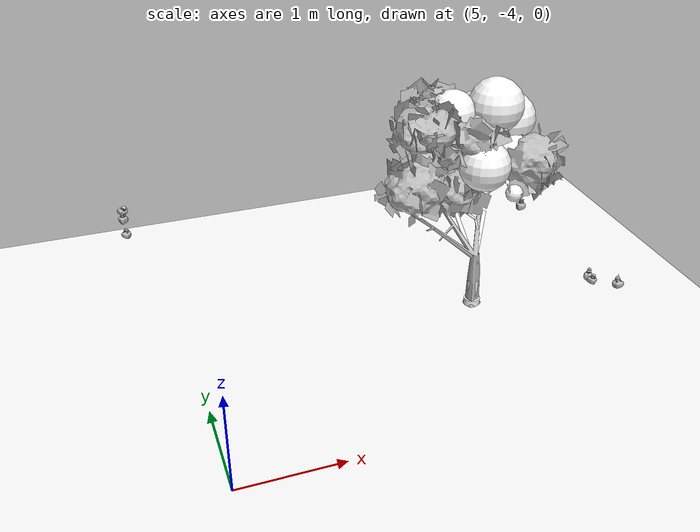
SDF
<sdf version="1.11">
 <world name="peach_orchard">
  <model name="ground">
   <static>true</static>
   <link name="link">
    <visual name="soil">
     <geometry><plane><normal>0 0 1</normal><size>32 22</size></plane></geometry>
     <material>
      <ambient>1 1 1 1</ambient>
      <diffuse>1 1 1 1</diffuse>
      <specular>0.1 0.1 0.1 1</specular>
      <pbr>
       <metal>
        <albedo_map>textures/soil_albedo.png</albedo_map>
        <normal_map type="tangent">textures/soil_normal.png</normal_map>
        <roughness>0.95</roughness>
        <metalness>0</metalness>
       </metal>
      </pbr>
     </material>
    </visual>
    <collision name="c_soil">
     <geometry><plane><normal>0 0 1</normal><size>32 22</size></plane></geometry>
    </collision>
   </link>
  </model>
  <model name="tree_r4_t2">
   <pose>8 -2.2 0 0 0 0</pose>
   <static>true</static>
   <link name="link">
    <visual name="tree_mesh">
     <pose>0 0 0 0 0 0.340988</pose>
     <geometry>
      <mesh><uri>model://peach_sim/meshes/peach_tree_a.glb</uri><scale>1.06646 1.06646 1.06646</scale></mesh>
     </geometry>
    </visual>
    <visual name="trunk_0">
     <pose>0 0 0.148714 0 0 0</pose>
     <geometry><cylinder><radius>0.0594382</radius><length>0.297428</length></cylinder></geometry>
     <material>
      <ambient>1 1 1 1</ambient>
      <diffuse>1 1 1 1</diffuse>
      <specular>0.1 0.1 0.1 1</specular>
      <pbr>
       <metal>
        <albedo_map>textures/bark_albedo.png</albedo_map>
        <normal_map type="tangent">textures/bark_normal.png</normal_map>
        <roughness>0.9</roughness>
        <metalness>0</metalness>
       </metal>
      </pbr>
     </material>
    </visual>
    <collision name="c_trunk_0">
     <pose>0 0 0.148714 0 0 0</pose>
     <geometry><cylinder><radius>0.0594382</radius><length>0.297428</length></cylinder></geometry>
    </collision>
    <visual name="trunk_1">
     <pose>0 0 0.419102 0 0 0</pose>
     <geometry><cylinder><radius>0.0427955</radius><length>0.24335</length></cylinder></geometry>
     <material>
      <ambient>1 1 1 1</ambient>
      <diffuse>1 1 1 1</diffuse>
      <specular>0.1 0.1 0.1 1</specular>
      <pbr>
       <metal>
        <albedo_map>textures/bark_albedo.png</albedo_map>
        <normal_map type="tangent">textures/bark_normal.png</normal_map>
        <roughness>0.9</roughness>
        <metalness>0</metalness>
       </metal>
      </pbr>
     </material>
    </visual>
    <collision name="c_trunk_1">
     <pose>0 0 0.419102 0 0 0</pose>
     <geometry><cylinder><radius>0.0427955</radius><length>0.24335</length></cylinder></geometry>
    </collision>
    <visual name="root_flare">
     <pose>0 0 0.035 0 0 0</pose>
     <geometry><cylinder><radius>0.0861854</radius><length>0.07</length></cylinder></geometry>
     <material>
      <ambient>1 1 1 1</ambient>
      <diffuse>1 1 1 1</diffuse>
      <specular>0.1 0.1 0.1 1</specular>
      <pbr>
       <metal>
        <albedo_map>textures/bark_albedo.png</albedo_map>
        <normal_map type="tangent">textures/bark_normal.png</normal_map>
        <roughness>0.95</roughness>
        <metalness>0</metalness>
       </metal>
      </pbr>
     </material>
    </visual>
    <visual name="scaffold_0">
     <pose>0.00829332 0.386123 0.733325 0 1.02264 1.54932</pose>
     <geometry><cylinder><radius>0.022</radius><length>0.905021</length></cylinder></geometry>
     <material>
      <ambient>1 1 1 1</ambient>
      <diffuse>1 1 1 1</diffuse>
      <specular>0.1 0.1 0.1 1</specular>
      <pbr>
       <metal>
        <albedo_map>textures/bark_albedo.png</albedo_map>
        <normal_map type="tangent">textures/bark_normal.png</normal_map>
        <roughness>0.9</roughness>
        <metalness>0</metalness>
       </metal>
      </pbr>
     </material>
    </visual>
    <collision name="c_scaffold_0">
     <pose>0.00829332 0.386123 0.733325 0 1.02264 1.54932</pose>
     <geometry><cylinder><radius>0.022</radius><length>0.905021</length></cylinder></geometry>
    </collision>
    <visual name="branchlet_0_0">
     <pose>0.0829994 0.738779 0.991585 0 0.859458 0.581952</pose>
     <geometry><cylinder><radius>0.012</radius><length>0.215215</length></cylinder></geometry>
     <material>
      <ambient>1 1 1 1</ambient>
      <diffuse>1 1 1 1</diffuse>
      <specular>0.1 0.1 0.1 1</specular>
      <pbr>
       <metal>
        <albedo_map>textures/bark_albedo.png</albedo_map>
        <normal_map type="tangent">textures/bark_normal.png</normal_map>
        <roughness>0.9</roughness>
        <metalness>0</metalness>
       </metal>
      </pbr>
     </material>
    </visual>
    <visual name="branchlet_0_1">
     <pose>0.115866 0.759489 0.999153 0 0.970603 0.727887</pose>
     <geometry><cylinder><radius>0.012</radius><length>0.32948</length></cylinder></geometry>
     <material>
      <ambient>1 1 1 1</ambient>
      <diffuse>1 1 1 1</diffuse>
      <specular>0.1 0.1 0.1 1</specular>
      <pbr>
       <metal>
        <albedo_map>textures/bark_albedo.png</albedo_map>
        <normal_map type="tangent">textures/bark_normal.png</normal_map>
        <roughness>0.9</roughness>
        <metalness>0</metalness>
       </metal>
      </pbr>
     </material>
    </visual>
    <visual name="scaffold_1">
     <pose>0.138366 0.19628 0.684572 0 0.90904 0.956763</pose>
     <geometry><cylinder><radius>0.022</radius><length>0.608805</length></cylinder></geometry>
     <material>
      <ambient>1 1 1 1</ambient>
      <diffuse>1 1 1 1</diffuse>
      <specular>0.1 0.1 0.1 1</specular>
      <pbr>
       <metal>
        <albedo_map>textures/bark_albedo.png</albedo_map>
        <normal_map type="tangent">textures/bark_normal.png</normal_map>
        <roughness>0.9</roughness>
        <metalness>0</metalness>
       </metal>
      </pbr>
     </material>
    </visual>
    <collision name="c_scaffold_1">
     <pose>0.138366 0.19628 0.684572 0 0.90904 0.956763</pose>
     <geometry><cylinder><radius>0.022</radius><length>0.608805</length></cylinder></geometry>
    </collision>
    <visual name="branchlet_1_0">
     <pose>0.146969 0.448944 0.812696 0 1.38606 1.97144</pose>
     <geometry><cylinder><radius>0.012</radius><length>0.331901</length></cylinder></geometry>
     <material>
      <ambient>1 1 1 1</ambient>
      <diffuse>1 1 1 1</diffuse>
      <specular>0.1 0.1 0.1 1</specular>
      <pbr>
       <metal>
        <albedo_map>textures/bark_albedo.png</albedo_map>
        <normal_map type="tangent">textures/bark_normal.png</normal_map>
        <roughness>0.9</roughness>
        <metalness>0</metalness>
       </metal>
      </pbr>
     </material>
    </visual>
    <visual name="branchlet_1_1">
     <pose>0.118994 0.219207 0.784208 0 0.292807 2.24784</pose>
     <geometry><cylinder><radius>0.012</radius><length>0.209376</length></cylinder></geometry>
     <material>
      <ambient>1 1 1 1</ambient>
      <diffuse>1 1 1 1</diffuse>
      <specular>0.1 0.1 0.1 1</specular>
      <pbr>
       <metal>
        <albedo_map>textures/bark_albedo.png</albedo_map>
        <normal_map type="tangent">textures/bark_normal.png</normal_map>
        <roughness>0.9</roughness>
        <metalness>0</metalness>
       </metal>
      </pbr>
     </material>
    </visual>
    <visual name="canopy_0">
     <pose>0.0830698 0.545833 1.75556 0 0 0</pose>
     <geometry><sphere><radius>0.25757</radius></sphere></geometry>
     <material>
      <ambient>1 1 1 1</ambient>
      <diffuse>1 1 1 1</diffuse>
      <specular>0.1 0.1 0.1 1</specular>
      <pbr>
       <metal>
        <albedo_map>textures/leaf_albedo.png</albedo_map>
        <normal_map type="tangent">textures/leaf_normal.png</normal_map>
        <roughness>0.85</roughness>
        <metalness>0</metalness>
       </metal>
      </pbr>
     </material>
    </visual>
    <collision name="c_canopy_0">
     <pose>0.0830698 0.545833 1.75556 0 0 0</pose>
     <geometry><sphere><radius>0.25757</radius></sphere></geometry>
    </collision>
    <visual name="canopy_1">
     <pose>0.484981 0.436095 1.90812 0 0 0</pose>
     <geometry><sphere><radius>0.283323</radius></sphere></geometry>
     <material>
      <ambient>1 1 1 1</ambient>
      <diffuse>1 1 1 1</diffuse>
      <specular>0.1 0.1 0.1 1</specular>
      <pbr>
       <metal>
        <albedo_map>textures/leaf_albedo.png</albedo_map>
        <normal_map type="tangent">textures/leaf_normal.png</normal_map>
        <roughness>0.85</roughness>
        <metalness>0</metalness>
       </metal>
      </pbr>
     </material>
    </visual>
    <collision name="c_canopy_1">
     <pose>0.484981 0.436095 1.90812 0 0 0</pose>
     <geometry><sphere><radius>0.283323</radius></sphere></geometry>
    </collision>
    <visual name="canopy_2">
     <pose>-0.106947 0.537688 1.96744 0 0 0</pose>
     <geometry><sphere><radius>0.259256</radius></sphere></geometry>
     <material>
      <ambient>1 1 1 1</ambient>
      <diffuse>1 1 1 1</diffuse>
      <specular>0.1 0.1 0.1 1</specular>
      <pbr>
       <metal>
        <albedo_map>textures/leaf_albedo.png</albedo_map>
        <normal_map type="tangent">textures/leaf_normal.png</normal_map>
        <roughness>0.85</roughness>
        <metalness>0</metalness>
       </metal>
      </pbr>
     </material>
    </visual>
    <collision name="c_canopy_2">
     <pose>-0.106947 0.537688 1.96744 0 0 0</pose>
     <geometry><sphere><radius>0.259256</radius></sphere></geometry>
    </collision>
    <visual name="canopy_3">
     <pose>0.433535 0.160575 1.61621 0 0 0</pose>
     <geometry><sphere><radius>0.215038</radius></sphere></geometry>
     <material>
      <ambient>1 1 1 1</ambient>
      <diffuse>1 1 1 1</diffuse>
      <specular>0.1 0.1 0.1 1</specular>
      <pbr>
       <metal>
        <albedo_map>textures/leaf_albedo.png</albedo_map>
        <normal_map type="tangent">textures/leaf_normal.png</normal_map>
        <roughness>0.85</roughness>
        <metalness>0</metalness>
       </metal>
      </pbr>
     </material>
    </visual>
    <visual name="canopy_4">
     <pose>-0.170918 0.381551 2.05951 0 0 0</pose>
     <geometry><sphere><radius>0.24313</radius></sphere></geometry>
     <material>
      <ambient>1 1 1 1</ambient>
      <diffuse>1 1 1 1</diffuse>
      <specular>0.1 0.1 0.1 1</specular>
      <pbr>
       <metal>
        <albedo_map>textures/leaf_albedo.png</albedo_map>
        <normal_map type="tangent">textures/leaf_normal.png</normal_map>
        <roughness>0.85</roughness>
        <metalness>0</metalness>
       </metal>
      </pbr>
     </material>
    </visual>
    <visual name="canopy_5">
     <pose>0.259 0.29291 2.13065 0 0 0</pose>
     <geometry><sphere><radius>0.282477</radius></sphere></geometry>
     <material>
      <ambient>1 1 1 1</ambient>
      <diffuse>1 1 1 1</diffuse>
      <specular>0.1 0.1 0.1 1</specular>
      <pbr>
       <metal>
        <albedo_map>textures/leaf_albedo.png</albedo_map>
        <normal_map type="tangent">textures/leaf_normal.png</normal_map>
        <roughness>0.85</roughness>
        <metalness>0</metalness>
       </metal>
      </pbr>
     </material>
    </visual>
    <visual name="canopy_6">
     <pose>0.156801 0.472894 1.93117 0 0 0</pose>
     <geometry><sphere><radius>0.288171</radius></sphere></geometry>
     <material>
      <ambient>1 1 1 1</ambient>
      <diffuse>1 1 1 1</diffuse>
      <specular>0.1 0.1 0.1 1</specular>
      <pbr>
       <metal>
        <albedo_map>textures/leaf_albedo.png</albedo_map>
        <normal_map type="tangent">textures/leaf_normal.png</normal_map>
        <roughness>0.85</roughness>
        <metalness>0</metalness>
       </metal>
      </pbr>
     </material>
    </visual>
    <visual name="canopy_7">
     <pose>0.0464488 0.030394 1.61475 0 0 0</pose>
     <geometry><sphere><radius>0.262493</radius></sphere></geometry>
     <material>
      <ambient>1 1 1 1</ambient>
      <diffuse>1 1 1 1</diffuse>
      <specular>0.1 0.1 0.1 1</specular>
      <pbr>
       <metal>
        <albedo_map>textures/leaf_albedo.png</albedo_map>
        <normal_map type="tangent">textures/leaf_normal.png</normal_map>
        <roughness>0.85</roughness>
        <metalness>0</metalness>
       </metal>
      </pbr>
     </material>
    </visual>
    <visual name="canopy_8">
     <pose>-0.196479 0.629641 1.61171 0 0 0</pose>
     <geometry><sphere><radius>0.319051</radius></sphere></geometry>
     <material>
      <ambient>1 1 1 1</ambient>
      <diffuse>1 1 1 1</diffuse>
      <specular>0.1 0.1 0.1 1</specular>
      <pbr>
       <metal>
        <albedo_map>textures/leaf_albedo.png</albedo_map>
        <normal_map type="tangent">textures/leaf_normal.png</normal_map>
        <roughness>0.85</roughness>
        <metalness>0</metalness>
       </metal>
      </pbr>
     </material>
    </visual>
    <visual name="foliage_0">
     <pose>0.268412 0.566721 1.40834 0 0 0</pose>
     <geometry><sphere><radius>0.0830375</radius></sphere></geometry>
     <material>
      <ambient>1 1 1 1</ambient>
      <diffuse>1 1 1 1</diffuse>
      <specular>0.1 0.1 0.1 1</specular>
      <pbr>
       <metal>
        <albedo_map>textures/leaf_albedo.png</albedo_map>
        <normal_map type="tangent">textures/leaf_normal.png</normal_map>
        <roughness>0.85</roughness>
        <metalness>0</metalness>
       </metal>
      </pbr>
     </material>
    </visual>
    <visual name="foliage_4">
     <pose>0.24187 -0.252794 1.41346 0 0 0</pose>
     <geometry><sphere><radius>0.0859828</radius></sphere></geometry>
     <material>
      <ambient>1 1 1 1</ambient>
      <diffuse>1 1 1 1</diffuse>
      <specular>0.1 0.1 0.1 1</specular>
      <pbr>
       <metal>
        <albedo_map>textures/leaf_albedo.png</albedo_map>
        <normal_map type="tangent">textures/leaf_normal.png</normal_map>
        <roughness>0.85</roughness>
        <metalness>0</metalness>
       </metal>
      </pbr>
     </material>
    </visual>
    <visual name="twig_0">
     <pose>0.196257 0.566528 1.53725 0 0.734194 -2.82541</pose>
     <geometry><cylinder><radius>0.007</radius><length>0.116029</length></cylinder></geometry>
     <material>
      <ambient>1 1 1 1</ambient>
      <diffuse>1 1 1 1</diffuse>
      <specular>0.1 0.1 0.1 1</specular>
      <pbr>
       <metal>
        <albedo_map>textures/bark_albedo.png</albedo_map>
        <normal_map type="tangent">textures/bark_normal.png</normal_map>
        <roughness>0.9</roughness>
        <metalness>0</metalness>
       </metal>
      </pbr>
     </material>
    </visual>
    <visual name="twig_1">
     <pose>0.20521 0.66517 1.60827 0 0.240102 2.1912</pose>
     <geometry><cylinder><radius>0.007</radius><length>0.174486</length></cylinder></geometry>
     <material>
      <ambient>1 1 1 1</ambient>
      <diffuse>1 1 1 1</diffuse>
      <specular>0.1 0.1 0.1 1</specular>
      <pbr>
       <metal>
        <albedo_map>textures/bark_albedo.png</albedo_map>
        <normal_map type="tangent">textures/bark_normal.png</normal_map>
        <roughness>0.9</roughness>
        <metalness>0</metalness>
       </metal>
      </pbr>
     </material>
    </visual>
    <visual name="twig_2">
     <pose>0.131875 0.836762 1.57603 0 0.717 2.77368</pose>
     <geometry><cylinder><radius>0.007</radius><length>0.207103</length></cylinder></geometry>
     <material>
      <ambient>1 1 1 1</ambient>
      <diffuse>1 1 1 1</diffuse>
      <specular>0.1 0.1 0.1 1</specular>
      <pbr>
       <metal>
        <albedo_map>textures/bark_albedo.png</albedo_map>
        <normal_map type="tangent">textures/bark_normal.png</normal_map>
        <roughness>0.9</roughness>
        <metalness>0</metalness>
       </metal>
      </pbr>
     </material>
    </visual>
    <visual name="twig_3">
     <pose>0.21369 -0.445533 1.46223 0 0.329534 -2.12654</pose>
     <geometry><cylinder><radius>0.007</radius><length>0.110108</length></cylinder></geometry>
     <material>
      <ambient>1 1 1 1</ambient>
      <diffuse>1 1 1 1</diffuse>
      <specular>0.1 0.1 0.1 1</specular>
      <pbr>
       <metal>
        <albedo_map>textures/bark_albedo.png</albedo_map>
        <normal_map type="tangent">textures/bark_normal.png</normal_map>
        <roughness>0.9</roughness>
        <metalness>0</metalness>
       </metal>
      </pbr>
     </material>
    </visual>
    <visual name="twig_4">
     <pose>0.198644 -0.259182 1.44782 0 0.461128 2.70982</pose>
     <geometry><cylinder><radius>0.007</radius><length>0.112149</length></cylinder></geometry>
     <material>
      <ambient>1 1 1 1</ambient>
      <diffuse>1 1 1 1</diffuse>
      <specular>0.1 0.1 0.1 1</specular>
      <pbr>
       <metal>
        <albedo_map>textures/bark_albedo.png</albedo_map>
        <normal_map type="tangent">textures/bark_normal.png</normal_map>
        <roughness>0.9</roughness>
        <metalness>0</metalness>
       </metal>
      </pbr>
     </material>
    </visual>
    <visual name="twig_5">
     <pose>0.17127 -0.283628 1.4596 0 0.439586 -2.78588</pose>
     <geometry><cylinder><radius>0.007</radius><length>0.204386</length></cylinder></geometry>
     <material>
      <ambient>1 1 1 1</ambient>
      <diffuse>1 1 1 1</diffuse>
      <specular>0.1 0.1 0.1 1</specular>
      <pbr>
       <metal>
        <albedo_map>textures/bark_albedo.png</albedo_map>
        <normal_map type="tangent">textures/bark_normal.png</normal_map>
        <roughness>0.9</roughness>
        <metalness>0</metalness>
       </metal>
      </pbr>
     </material>
    </visual>
   </link>
  </model>
  <model name="peach_tree_r3_t2_01">
   <pose>4.55 -2.07851 1.41006 0 0.0782309 -1.06791</pose>
   <static>true</static>
   <link name="bag">
    <visual name="bag_mesh">
     <pose>0 0 0.0387659 0 0 -0</pose>
     <geometry>
      <mesh><uri>model://peach_sim/meshes/bagged_peach.glb</uri><scale>0.987042 1.13874 0.881043</scale></mesh>
     </geometry>
    </visual>
    <visual name="body">
     <pose>0 0 0.0207659 0 0 0</pose>
     <geometry><ellipsoid><radii>0.0370141 0.0296072 0.0224272</radii></ellipsoid></geometry>
     <material>
      <ambient>1 1 1 1</ambient>
      <diffuse>1 1 1 1</diffuse>
      <specular>0.1 0.1 0.1 1</specular>
      <pbr>
       <metal>
        <albedo_map>textures/paper_bag_albedo.png</albedo_map>
        <normal_map type="tangent">textures/paper_bag_normal.png</normal_map>
        <roughness>0.72</roughness>
        <metalness>0</metalness>
       </metal>
      </pbr>
     </material>
    </visual>
    <visual name="bottom_fold">
     <pose>0 0 0.012 0 0 0.35</pose>
     <geometry><box><size>0.0573718 0.0340483 0.022</size></box></geometry>
     <material>
      <ambient>1 1 1 1</ambient>
      <diffuse>1 1 1 1</diffuse>
      <specular>0.1 0.1 0.1 1</specular>
      <pbr>
       <metal>
        <albedo_map>textures/paper_bag_albedo.png</albedo_map>
        <normal_map type="tangent">textures/paper_bag_normal.png</normal_map>
        <roughness>0.8</roughness>
        <metalness>0</metalness>
       </metal>
      </pbr>
     </material>
    </visual>
    <visual name="fruit">
     <pose>0 0 0.0206395 0 0 0</pose>
     <geometry><sphere><radius>0.0277051</radius></sphere></geometry>
     <material>
      <ambient>1 1 1 1</ambient>
      <diffuse>1 1 1 1</diffuse>
      <specular>0.1 0.1 0.1 1</specular>
      <pbr>
       <metal>
        <albedo_map>textures/fruit_skin_albedo.png</albedo_map>
        <normal_map type="tangent">textures/fruit_skin_normal.png</normal_map>
        <roughness>0.55</roughness>
        <metalness>0</metalness>
       </metal>
      </pbr>
     </material>
    </visual>
    <visual name="neck">
     <pose>0 0 0.0505318 0 0 0</pose>
     <geometry><cylinder><radius>0.013</radius><length>0.018</length></cylinder></geometry>
     <material>
      <ambient>1 1 1 1</ambient>
      <diffuse>1 1 1 1</diffuse>
      <specular>0.1 0.1 0.1 1</specular>
      <pbr>
       <metal>
        <albedo_map>textures/paper_bag_albedo.png</albedo_map>
        <normal_map type="tangent">textures/paper_bag_normal.png</normal_map>
        <roughness>0.75</roughness>
        <metalness>0</metalness>
       </metal>
      </pbr>
     </material>
    </visual>
    <visual name="gather">
     <pose>0 0 0.0315318 0 0 0</pose>
     <geometry><cylinder><radius>0.019</radius><length>0.02</length></cylinder></geometry>
     <material>
      <ambient>1 1 1 1</ambient>
      <diffuse>1 1 1 1</diffuse>
      <specular>0.1 0.1 0.1 1</specular>
      <pbr>
       <metal>
        <albedo_map>textures/paper_bag_albedo.png</albedo_map>
        <normal_map type="tangent">textures/paper_bag_normal.png</normal_map>
        <roughness>0.8</roughness>
        <metalness>0</metalness>
       </metal>
      </pbr>
     </material>
    </visual>
    <visual name="inner_paper">
     <pose>0 0 0.0555318 0 0 0</pose>
     <geometry><cylinder><radius>0.01</radius><length>0.008</length></cylinder></geometry>
     <material>
      <ambient>0.180392 0.14902 0.133333 1</ambient>
      <diffuse>0.180392 0.14902 0.133333 1</diffuse>
      <specular>0.1 0.1 0.1 1</specular>
     </material>
    </visual>
    <visual name="wire_0">
     <pose>0 0 0.0455318 0 0 0</pose>
     <geometry><cylinder><radius>0.0205</radius><length>0.0035</length></cylinder></geometry>
     <material>
      <ambient>0.25 0.25 0.25 1</ambient>
      <diffuse>0.25 0.25 0.25 1</diffuse>
      <specular>0.1 0.1 0.1 1</specular>
     </material>
    </visual>
    <visual name="wire_1">
     <pose>0 0 0.0525318 0 0 0</pose>
     <geometry><cylinder><radius>0.0205</radius><length>0.0035</length></cylinder></geometry>
     <material>
      <ambient>0.25 0.25 0.25 1</ambient>
      <diffuse>0.25 0.25 0.25 1</diffuse>
      <specular>0.1 0.1 0.1 1</specular>
     </material>
    </visual>
    <visual name="wire_tail">
     <pose>0.01 0 0.0535318 0 0.521618 0</pose>
     <geometry><cylinder><radius>0.0012</radius><length>0.026</length></cylinder></geometry>
     <material>
      <ambient>0.25 0.25 0.25 1</ambient>
      <diffuse>0.25 0.25 0.25 1</diffuse>
      <specular>0.1 0.1 0.1 1</specular>
     </material>
    </visual>
    <collision name="c_body">
     <pose>0 0 0.0207659 0 0 0</pose>
     <geometry><cylinder><radius>0.0370141</radius><length>0.0415318</length></cylinder></geometry>
    </collision>
   </link>
  </model>
  <model name="peach_tree_r3_t2_02">
   <pose>4.55 -1.87593 1.45 0 2.53852e-06 0.491273</pose>
   <static>true</static>
   <link name="bag">
    <visual name="bag_mesh">
     <pose>0 0 0.0459503 0 0 0</pose>
     <geometry>
      <mesh><uri>model://peach_sim/meshes/bagged_peach.glb</uri><scale>0.977444 1.1449 1.04432</scale></mesh>
     </geometry>
    </visual>
    <visual name="body">
     <pose>0 0 0.0279503 0 0 0</pose>
     <geometry><ellipsoid><radii>0.0366541 0.0297673 0.0301863</radii></ellipsoid></geometry>
     <material>
      <ambient>1 1 1 1</ambient>
      <diffuse>1 1 1 1</diffuse>
      <specular>0.1 0.1 0.1 1</specular>
      <pbr>
       <metal>
        <albedo_map>textures/paper_bag_albedo.png</albedo_map>
        <normal_map type="tangent">textures/paper_bag_normal.png</normal_map>
        <roughness>0.72</roughness>
        <metalness>0</metalness>
       </metal>
      </pbr>
     </material>
    </visual>
    <visual name="bottom_fold">
     <pose>0 0 0.012 0 0 0.35</pose>
     <geometry><box><size>0.0568139 0.0342324 0.022</size></box></geometry>
     <material>
      <ambient>1 1 1 1</ambient>
      <diffuse>1 1 1 1</diffuse>
      <specular>0.1 0.1 0.1 1</specular>
      <pbr>
       <metal>
        <albedo_map>textures/paper_bag_albedo.png</albedo_map>
        <normal_map type="tangent">textures/paper_bag_normal.png</normal_map>
        <roughness>0.8</roughness>
        <metalness>0</metalness>
       </metal>
      </pbr>
     </material>
    </visual>
    <visual name="fruit">
     <pose>0 0 0.0214281 0 0 0</pose>
     <geometry><sphere><radius>0.0285252</radius></sphere></geometry>
     <material>
      <ambient>1 1 1 1</ambient>
      <diffuse>1 1 1 1</diffuse>
      <specular>0.1 0.1 0.1 1</specular>
      <pbr>
       <metal>
        <albedo_map>textures/fruit_skin_albedo.png</albedo_map>
        <normal_map type="tangent">textures/fruit_skin_normal.png</normal_map>
        <roughness>0.55</roughness>
        <metalness>0</metalness>
       </metal>
      </pbr>
     </material>
    </visual>
    <visual name="neck">
     <pose>0 0 0.0649006 0 0 0</pose>
     <geometry><cylinder><radius>0.013</radius><length>0.018</length></cylinder></geometry>
     <material>
      <ambient>1 1 1 1</ambient>
      <diffuse>1 1 1 1</diffuse>
      <specular>0.1 0.1 0.1 1</specular>
      <pbr>
       <metal>
        <albedo_map>textures/paper_bag_albedo.png</albedo_map>
        <normal_map type="tangent">textures/paper_bag_normal.png</normal_map>
        <roughness>0.75</roughness>
        <metalness>0</metalness>
       </metal>
      </pbr>
     </material>
    </visual>
    <visual name="gather">
     <pose>0 0 0.0459006 0 0 0</pose>
     <geometry><cylinder><radius>0.019</radius><length>0.02</length></cylinder></geometry>
     <material>
      <ambient>1 1 1 1</ambient>
      <diffuse>1 1 1 1</diffuse>
      <specular>0.1 0.1 0.1 1</specular>
      <pbr>
       <metal>
        <albedo_map>textures/paper_bag_albedo.png</albedo_map>
        <normal_map type="tangent">textures/paper_bag_normal.png</normal_map>
        <roughness>0.8</roughness>
        <metalness>0</metalness>
       </metal>
      </pbr>
     </material>
    </visual>
    <visual name="inner_paper">
     <pose>0 0 0.0699006 0 0 0</pose>
     <geometry><cylinder><radius>0.01</radius><length>0.008</length></cylinder></geometry>
     <material>
      <ambient>0.180392 0.14902 0.133333 1</ambient>
      <diffuse>0.180392 0.14902 0.133333 1</diffuse>
      <specular>0.1 0.1 0.1 1</specular>
     </material>
    </visual>
    <visual name="wire_0">
     <pose>0 0 0.0599006 0 0 0</pose>
     <geometry><cylinder><radius>0.0205</radius><length>0.0035</length></cylinder></geometry>
     <material>
      <ambient>0.25 0.25 0.25 1</ambient>
      <diffuse>0.25 0.25 0.25 1</diffuse>
      <specular>0.1 0.1 0.1 1</specular>
     </material>
    </visual>
    <visual name="wire_1">
     <pose>0 0 0.0669006 0 0 0</pose>
     <geometry><cylinder><radius>0.0205</radius><length>0.0035</length></cylinder></geometry>
     <material>
      <ambient>0.25 0.25 0.25 1</ambient>
      <diffuse>0.25 0.25 0.25 1</diffuse>
      <specular>0.1 0.1 0.1 1</specular>
     </material>
    </visual>
    <visual name="wire_tail">
     <pose>0.01 0 0.0679006 0 0.521618 0</pose>
     <geometry><cylinder><radius>0.0012</radius><length>0.026</length></cylinder></geometry>
     <material>
      <ambient>0.25 0.25 0.25 1</ambient>
      <diffuse>0.25 0.25 0.25 1</diffuse>
      <specular>0.1 0.1 0.1 1</specular>
     </material>
    </visual>
    <collision name="c_body">
     <pose>0 0 0.0279503 0 0 0</pose>
     <geometry><cylinder><radius>0.0366541</radius><length>0.0559006</length></cylinder></geometry>
    </collision>
   </link>
  </model>
  <model name="peach_tree_r3_t2_03">
   <pose>4.55 -1.68436 1.45 0 0.57519 -1.01342</pose>
   <static>true</static>
   <link name="bag">
    <visual name="bag_mesh">
     <pose>0 0 0.0461882 0 0 -0</pose>
     <geometry>
      <mesh><uri>model://peach_sim/meshes/bagged_peach.glb</uri><scale>1.06417 1.29968 1.04973</scale></mesh>
     </geometry>
    </visual>
    <visual name="body">
     <pose>0 0 0.0281882 0 0 0</pose>
     <geometry><ellipsoid><radii>0.0399064 0.0337916 0.0304432</radii></ellipsoid></geometry>
     <material>
      <ambient>1 1 1 1</ambient>
      <diffuse>1 1 1 1</diffuse>
      <specular>0.1 0.1 0.1 1</specular>
      <pbr>
       <metal>
        <albedo_map>textures/paper_bag_albedo.png</albedo_map>
        <normal_map type="tangent">textures/paper_bag_normal.png</normal_map>
        <roughness>0.72</roughness>
        <metalness>0</metalness>
       </metal>
      </pbr>
     </material>
    </visual>
    <visual name="bottom_fold">
     <pose>0 0 0.012 0 0 0.35</pose>
     <geometry><box><size>0.061855 0.0388604 0.022</size></box></geometry>
     <material>
      <ambient>1 1 1 1</ambient>
      <diffuse>1 1 1 1</diffuse>
      <specular>0.1 0.1 0.1 1</specular>
      <pbr>
       <metal>
        <albedo_map>textures/paper_bag_albedo.png</albedo_map>
        <normal_map type="tangent">textures/paper_bag_normal.png</normal_map>
        <roughness>0.8</roughness>
        <metalness>0</metalness>
       </metal>
      </pbr>
     </material>
    </visual>
    <visual name="fruit">
     <pose>0 0 0.0208283 0 0 0</pose>
     <geometry><sphere><radius>0.0279014</radius></sphere></geometry>
     <material>
      <ambient>1 1 1 1</ambient>
      <diffuse>1 1 1 1</diffuse>
      <specular>0.1 0.1 0.1 1</specular>
      <pbr>
       <metal>
        <albedo_map>textures/fruit_skin_albedo.png</albedo_map>
        <normal_map type="tangent">textures/fruit_skin_normal.png</normal_map>
        <roughness>0.55</roughness>
        <metalness>0</metalness>
       </metal>
      </pbr>
     </material>
    </visual>
    <visual name="neck">
     <pose>0 0 0.0653764 0 0 0</pose>
     <geometry><cylinder><radius>0.013</radius><length>0.018</length></cylinder></geometry>
     <material>
      <ambient>1 1 1 1</ambient>
      <diffuse>1 1 1 1</diffuse>
      <specular>0.1 0.1 0.1 1</specular>
      <pbr>
       <metal>
        <albedo_map>textures/paper_bag_albedo.png</albedo_map>
        <normal_map type="tangent">textures/paper_bag_normal.png</normal_map>
        <roughness>0.75</roughness>
        <metalness>0</metalness>
       </metal>
      </pbr>
     </material>
    </visual>
    <visual name="gather">
     <pose>0 0 0.0463764 0 0 0</pose>
     <geometry><cylinder><radius>0.019</radius><length>0.02</length></cylinder></geometry>
     <material>
      <ambient>1 1 1 1</ambient>
      <diffuse>1 1 1 1</diffuse>
      <specular>0.1 0.1 0.1 1</specular>
      <pbr>
       <metal>
        <albedo_map>textures/paper_bag_albedo.png</albedo_map>
        <normal_map type="tangent">textures/paper_bag_normal.png</normal_map>
        <roughness>0.8</roughness>
        <metalness>0</metalness>
       </metal>
      </pbr>
     </material>
    </visual>
    <visual name="inner_paper">
     <pose>0 0 0.0703764 0 0 0</pose>
     <geometry><cylinder><radius>0.01</radius><length>0.008</length></cylinder></geometry>
     <material>
      <ambient>0.180392 0.14902 0.133333 1</ambient>
      <diffuse>0.180392 0.14902 0.133333 1</diffuse>
      <specular>0.1 0.1 0.1 1</specular>
     </material>
    </visual>
    <visual name="wire_0">
     <pose>0 0 0.0603764 0 0 0</pose>
     <geometry><cylinder><radius>0.0205</radius><length>0.0035</length></cylinder></geometry>
     <material>
      <ambient>0.25 0.25 0.25 1</ambient>
      <diffuse>0.25 0.25 0.25 1</diffuse>
      <specular>0.1 0.1 0.1 1</specular>
     </material>
    </visual>
    <visual name="wire_1">
     <pose>0 0 0.0673764 0 0 0</pose>
     <geometry><cylinder><radius>0.0205</radius><length>0.0035</length></cylinder></geometry>
     <material>
      <ambient>0.25 0.25 0.25 1</ambient>
      <diffuse>0.25 0.25 0.25 1</diffuse>
      <specular>0.1 0.1 0.1 1</specular>
     </material>
    </visual>
    <visual name="wire_tail">
     <pose>0.01 0 0.0683764 0 0.521618 0</pose>
     <geometry><cylinder><radius>0.0012</radius><length>0.026</length></cylinder></geometry>
     <material>
      <ambient>0.25 0.25 0.25 1</ambient>
      <diffuse>0.25 0.25 0.25 1</diffuse>
      <specular>0.1 0.1 0.1 1</specular>
     </material>
    </visual>
    <collision name="c_body">
     <pose>0 0 0.0281882 0 0 0</pose>
     <geometry><cylinder><radius>0.0399064</radius><length>0.0563764</length></cylinder></geometry>
    </collision>
   </link>
  </model>
  <model name="peach_tree_r4_t1_02">
   <pose>8.22 -4.24792 1.45 0 0.104885 -2.96342</pose>
   <static>true</static>
   <link name="bag">
    <visual name="bag_mesh">
     <pose>0 0 0.0405945 0 0 -0</pose>
     <geometry>
      <mesh><uri>model://peach_sim/meshes/bagged_peach.glb</uri><scale>1.02337 1.24229 0.922601</scale></mesh>
     </geometry>
    </visual>
    <visual name="body">
     <pose>0 0 0.0225945 0 0 0</pose>
     <geometry><ellipsoid><radii>0.0383764 0.0322996 0.024402</radii></ellipsoid></geometry>
     <material>
      <ambient>1 1 1 1</ambient>
      <diffuse>1 1 1 1</diffuse>
      <specular>0.1 0.1 0.1 1</specular>
      <pbr>
       <metal>
        <albedo_map>textures/paper_bag_albedo.png</albedo_map>
        <normal_map type="tangent">textures/paper_bag_normal.png</normal_map>
        <roughness>0.72</roughness>
        <metalness>0</metalness>
       </metal>
      </pbr>
     </material>
    </visual>
    <visual name="bottom_fold">
     <pose>0 0 0.012 0 0 0.35</pose>
     <geometry><box><size>0.0594835 0.0371446 0.022</size></box></geometry>
     <material>
      <ambient>1 1 1 1</ambient>
      <diffuse>1 1 1 1</diffuse>
      <specular>0.1 0.1 0.1 1</specular>
      <pbr>
       <metal>
        <albedo_map>textures/paper_bag_albedo.png</albedo_map>
        <normal_map type="tangent">textures/paper_bag_normal.png</normal_map>
        <roughness>0.8</roughness>
        <metalness>0</metalness>
       </metal>
      </pbr>
     </material>
    </visual>
    <visual name="fruit">
     <pose>0 0 0.0213285 0 0 0</pose>
     <geometry><sphere><radius>0.0284217</radius></sphere></geometry>
     <material>
      <ambient>1 1 1 1</ambient>
      <diffuse>1 1 1 1</diffuse>
      <specular>0.1 0.1 0.1 1</specular>
      <pbr>
       <metal>
        <albedo_map>textures/fruit_skin_albedo.png</albedo_map>
        <normal_map type="tangent">textures/fruit_skin_normal.png</normal_map>
        <roughness>0.55</roughness>
        <metalness>0</metalness>
       </metal>
      </pbr>
     </material>
    </visual>
    <visual name="neck">
     <pose>0 0 0.0541889 0 0 0</pose>
     <geometry><cylinder><radius>0.013</radius><length>0.018</length></cylinder></geometry>
     <material>
      <ambient>1 1 1 1</ambient>
      <diffuse>1 1 1 1</diffuse>
      <specular>0.1 0.1 0.1 1</specular>
      <pbr>
       <metal>
        <albedo_map>textures/paper_bag_albedo.png</albedo_map>
        <normal_map type="tangent">textures/paper_bag_normal.png</normal_map>
        <roughness>0.75</roughness>
        <metalness>0</metalness>
       </metal>
      </pbr>
     </material>
    </visual>
    <visual name="gather">
     <pose>0 0 0.0351889 0 0 0</pose>
     <geometry><cylinder><radius>0.019</radius><length>0.02</length></cylinder></geometry>
     <material>
      <ambient>1 1 1 1</ambient>
      <diffuse>1 1 1 1</diffuse>
      <specular>0.1 0.1 0.1 1</specular>
      <pbr>
       <metal>
        <albedo_map>textures/paper_bag_albedo.png</albedo_map>
        <normal_map type="tangent">textures/paper_bag_normal.png</normal_map>
        <roughness>0.8</roughness>
        <metalness>0</metalness>
       </metal>
      </pbr>
     </material>
    </visual>
    <visual name="inner_paper">
     <pose>0 0 0.0591889 0 0 0</pose>
     <geometry><cylinder><radius>0.01</radius><length>0.008</length></cylinder></geometry>
     <material>
      <ambient>0.180392 0.14902 0.133333 1</ambient>
      <diffuse>0.180392 0.14902 0.133333 1</diffuse>
      <specular>0.1 0.1 0.1 1</specular>
     </material>
    </visual>
    <visual name="wire_0">
     <pose>0 0 0.0491889 0 0 0</pose>
     <geometry><cylinder><radius>0.0205</radius><length>0.0035</length></cylinder></geometry>
     <material>
      <ambient>0.25 0.25 0.25 1</ambient>
      <diffuse>0.25 0.25 0.25 1</diffuse>
      <specular>0.1 0.1 0.1 1</specular>
     </material>
    </visual>
    <visual name="wire_1">
     <pose>0 0 0.0561889 0 0 0</pose>
     <geometry><cylinder><radius>0.0205</radius><length>0.0035</length></cylinder></geometry>
     <material>
      <ambient>0.25 0.25 0.25 1</ambient>
      <diffuse>0.25 0.25 0.25 1</diffuse>
      <specular>0.1 0.1 0.1 1</specular>
     </material>
    </visual>
    <visual name="wire_tail">
     <pose>0.01 0 0.0571889 0 0.521618 0</pose>
     <geometry><cylinder><radius>0.0012</radius><length>0.026</length></cylinder></geometry>
     <material>
      <ambient>0.25 0.25 0.25 1</ambient>
      <diffuse>0.25 0.25 0.25 1</diffuse>
      <specular>0.1 0.1 0.1 1</specular>
     </material>
    </visual>
    <collision name="c_body">
     <pose>0 0 0.0225945 0 0 0</pose>
     <geometry><cylinder><radius>0.0383764</radius><length>0.0451889</length></cylinder></geometry>
    </collision>
   </link>
  </model>
  <model name="peach_tree_r4_t1_05">
   <pose>8.22 -3.9004 1.27233 0 0.201589 -1.19009</pose>
   <static>true</static>
   <link name="bag">
    <visual name="bag_mesh">
     <pose>0 0 0.0412666 0 0 -0</pose>
     <geometry>
      <mesh><uri>model://peach_sim/meshes/bagged_peach.glb</uri><scale>0.938618 1.06285 0.937876</scale></mesh>
     </geometry>
    </visual>
    <visual name="body">
     <pose>0 0 0.0232666 0 0 0</pose>
     <geometry><ellipsoid><radii>0.0351982 0.0276341 0.0251279</radii></ellipsoid></geometry>
     <material>
      <ambient>1 1 1 1</ambient>
      <diffuse>1 1 1 1</diffuse>
      <specular>0.1 0.1 0.1 1</specular>
      <pbr>
       <metal>
        <albedo_map>textures/paper_bag_albedo.png</albedo_map>
        <normal_map type="tangent">textures/paper_bag_normal.png</normal_map>
        <roughness>0.72</roughness>
        <metalness>0</metalness>
       </metal>
      </pbr>
     </material>
    </visual>
    <visual name="bottom_fold">
     <pose>0 0 0.012 0 0 0.35</pose>
     <geometry><box><size>0.0545571 0.0317792 0.022</size></box></geometry>
     <material>
      <ambient>1 1 1 1</ambient>
      <diffuse>1 1 1 1</diffuse>
      <specular>0.1 0.1 0.1 1</specular>
      <pbr>
       <metal>
        <albedo_map>textures/paper_bag_albedo.png</albedo_map>
        <normal_map type="tangent">textures/paper_bag_normal.png</normal_map>
        <roughness>0.8</roughness>
        <metalness>0</metalness>
       </metal>
      </pbr>
     </material>
    </visual>
    <visual name="fruit">
     <pose>0 0 0.0177376 0 0 0</pose>
     <geometry><sphere><radius>0.0246871</radius></sphere></geometry>
     <material>
      <ambient>1 1 1 1</ambient>
      <diffuse>1 1 1 1</diffuse>
      <specular>0.1 0.1 0.1 1</specular>
      <pbr>
       <metal>
        <albedo_map>textures/fruit_skin_albedo.png</albedo_map>
        <normal_map type="tangent">textures/fruit_skin_normal.png</normal_map>
        <roughness>0.55</roughness>
        <metalness>0</metalness>
       </metal>
      </pbr>
     </material>
    </visual>
    <visual name="neck">
     <pose>0 0 0.0555331 0 0 0</pose>
     <geometry><cylinder><radius>0.013</radius><length>0.018</length></cylinder></geometry>
     <material>
      <ambient>1 1 1 1</ambient>
      <diffuse>1 1 1 1</diffuse>
      <specular>0.1 0.1 0.1 1</specular>
      <pbr>
       <metal>
        <albedo_map>textures/paper_bag_albedo.png</albedo_map>
        <normal_map type="tangent">textures/paper_bag_normal.png</normal_map>
        <roughness>0.75</roughness>
        <metalness>0</metalness>
       </metal>
      </pbr>
     </material>
    </visual>
    <visual name="gather">
     <pose>0 0 0.0365331 0 0 0</pose>
     <geometry><cylinder><radius>0.019</radius><length>0.02</length></cylinder></geometry>
     <material>
      <ambient>1 1 1 1</ambient>
      <diffuse>1 1 1 1</diffuse>
      <specular>0.1 0.1 0.1 1</specular>
      <pbr>
       <metal>
        <albedo_map>textures/paper_bag_albedo.png</albedo_map>
        <normal_map type="tangent">textures/paper_bag_normal.png</normal_map>
        <roughness>0.8</roughness>
        <metalness>0</metalness>
       </metal>
      </pbr>
     </material>
    </visual>
    <visual name="inner_paper">
     <pose>0 0 0.0605331 0 0 0</pose>
     <geometry><cylinder><radius>0.01</radius><length>0.008</length></cylinder></geometry>
     <material>
      <ambient>0.180392 0.14902 0.133333 1</ambient>
      <diffuse>0.180392 0.14902 0.133333 1</diffuse>
      <specular>0.1 0.1 0.1 1</specular>
     </material>
    </visual>
    <visual name="wire_0">
     <pose>0 0 0.0505331 0 0 0</pose>
     <geometry><cylinder><radius>0.0205</radius><length>0.0035</length></cylinder></geometry>
     <material>
      <ambient>0.25 0.25 0.25 1</ambient>
      <diffuse>0.25 0.25 0.25 1</diffuse>
      <specular>0.1 0.1 0.1 1</specular>
     </material>
    </visual>
    <visual name="wire_1">
     <pose>0 0 0.0575331 0 0 0</pose>
     <geometry><cylinder><radius>0.0205</radius><length>0.0035</length></cylinder></geometry>
     <material>
      <ambient>0.25 0.25 0.25 1</ambient>
      <diffuse>0.25 0.25 0.25 1</diffuse>
      <specular>0.1 0.1 0.1 1</specular>
     </material>
    </visual>
    <visual name="wire_tail">
     <pose>0.01 0 0.0585331 0 0.521618 0</pose>
     <geometry><cylinder><radius>0.0012</radius><length>0.026</length></cylinder></geometry>
     <material>
      <ambient>0.25 0.25 0.25 1</ambient>
      <diffuse>0.25 0.25 0.25 1</diffuse>
      <specular>0.1 0.1 0.1 1</specular>
     </material>
    </visual>
    <collision name="c_body">
     <pose>0 0 0.0232666 0 0 0</pose>
     <geometry><cylinder><radius>0.0351982</radius><length>0.0465331</length></cylinder></geometry>
    </collision>
   </link>
  </model>
  <model name="peach_tree_r4_t1_06">
   <pose>8.22 -3.84853 1.27 0 0.104276 0.880178</pose>
   <static>true</static>
   <link name="bag">
    <visual name="bag_mesh">
     <pose>0 0 0.0479022 0 0 0</pose>
     <geometry>
      <mesh><uri>model://peach_sim/meshes/bagged_peach.glb</uri><scale>0.942073 1.06115 1.08869</scale></mesh>
     </geometry>
    </visual>
    <visual name="body">
     <pose>0 0 0.0299022 0 0 0</pose>
     <geometry><ellipsoid><radii>0.0353277 0.02759 0.0322944</radii></ellipsoid></geometry>
     <material>
      <ambient>1 1 1 1</ambient>
      <diffuse>1 1 1 1</diffuse>
      <specular>0.1 0.1 0.1 1</specular>
      <pbr>
       <metal>
        <albedo_map>textures/paper_bag_albedo.png</albedo_map>
        <normal_map type="tangent">textures/paper_bag_normal.png</normal_map>
        <roughness>0.72</roughness>
        <metalness>0</metalness>
       </metal>
      </pbr>
     </material>
    </visual>
    <visual name="bottom_fold">
     <pose>0 0 0.012 0 0 0.35</pose>
     <geometry><box><size>0.054758 0.0317285 0.022</size></box></geometry>
     <material>
      <ambient>1 1 1 1</ambient>
      <diffuse>1 1 1 1</diffuse>
      <specular>0.1 0.1 0.1 1</specular>
      <pbr>
       <metal>
        <albedo_map>textures/paper_bag_albedo.png</albedo_map>
        <normal_map type="tangent">textures/paper_bag_normal.png</normal_map>
        <roughness>0.8</roughness>
        <metalness>0</metalness>
       </metal>
      </pbr>
     </material>
    </visual>
    <visual name="fruit">
     <pose>0 0 0.0197533 0 0 0</pose>
     <geometry><sphere><radius>0.0267834</radius></sphere></geometry>
     <material>
      <ambient>1 1 1 1</ambient>
      <diffuse>1 1 1 1</diffuse>
      <specular>0.1 0.1 0.1 1</specular>
      <pbr>
       <metal>
        <albedo_map>textures/fruit_skin_albedo.png</albedo_map>
        <normal_map type="tangent">textures/fruit_skin_normal.png</normal_map>
        <roughness>0.55</roughness>
        <metalness>0</metalness>
       </metal>
      </pbr>
     </material>
    </visual>
    <visual name="neck">
     <pose>0 0 0.0688045 0 0 0</pose>
     <geometry><cylinder><radius>0.013</radius><length>0.018</length></cylinder></geometry>
     <material>
      <ambient>1 1 1 1</ambient>
      <diffuse>1 1 1 1</diffuse>
      <specular>0.1 0.1 0.1 1</specular>
      <pbr>
       <metal>
        <albedo_map>textures/paper_bag_albedo.png</albedo_map>
        <normal_map type="tangent">textures/paper_bag_normal.png</normal_map>
        <roughness>0.75</roughness>
        <metalness>0</metalness>
       </metal>
      </pbr>
     </material>
    </visual>
    <visual name="gather">
     <pose>0 0 0.0498045 0 0 0</pose>
     <geometry><cylinder><radius>0.019</radius><length>0.02</length></cylinder></geometry>
     <material>
      <ambient>1 1 1 1</ambient>
      <diffuse>1 1 1 1</diffuse>
      <specular>0.1 0.1 0.1 1</specular>
      <pbr>
       <metal>
        <albedo_map>textures/paper_bag_albedo.png</albedo_map>
        <normal_map type="tangent">textures/paper_bag_normal.png</normal_map>
        <roughness>0.8</roughness>
        <metalness>0</metalness>
       </metal>
      </pbr>
     </material>
    </visual>
    <visual name="inner_paper">
     <pose>0 0 0.0738045 0 0 0</pose>
     <geometry><cylinder><radius>0.01</radius><length>0.008</length></cylinder></geometry>
     <material>
      <ambient>0.180392 0.14902 0.133333 1</ambient>
      <diffuse>0.180392 0.14902 0.133333 1</diffuse>
      <specular>0.1 0.1 0.1 1</specular>
     </material>
    </visual>
    <visual name="wire_0">
     <pose>0 0 0.0638045 0 0 0</pose>
     <geometry><cylinder><radius>0.0205</radius><length>0.0035</length></cylinder></geometry>
     <material>
      <ambient>0.25 0.25 0.25 1</ambient>
      <diffuse>0.25 0.25 0.25 1</diffuse>
      <specular>0.1 0.1 0.1 1</specular>
     </material>
    </visual>
    <visual name="wire_1">
     <pose>0 0 0.0708045 0 0 0</pose>
     <geometry><cylinder><radius>0.0205</radius><length>0.0035</length></cylinder></geometry>
     <material>
      <ambient>0.25 0.25 0.25 1</ambient>
      <diffuse>0.25 0.25 0.25 1</diffuse>
      <specular>0.1 0.1 0.1 1</specular>
     </material>
    </visual>
    <visual name="wire_tail">
     <pose>0.01 0 0.0718045 0 0.521618 0</pose>
     <geometry><cylinder><radius>0.0012</radius><length>0.026</length></cylinder></geometry>
     <material>
      <ambient>0.25 0.25 0.25 1</ambient>
      <diffuse>0.25 0.25 0.25 1</diffuse>
      <specular>0.1 0.1 0.1 1</specular>
     </material>
    </visual>
    <collision name="c_body">
     <pose>0 0 0.0299022 0 0 0</pose>
     <geometry><cylinder><radius>0.0353277</radius><length>0.0598045</length></cylinder></geometry>
    </collision>
   </link>
  </model>
  <model name="peach_tree_r4_t2_03">
   <pose>8.22 -2.62977 1.33069 0 0.0396612 -0.201427</pose>
   <static>true</static>
   <link name="bag">
    <visual name="bag_mesh">
     <pose>0 0 0.0487578 0 0 -0</pose>
     <geometry>
      <mesh><uri>model://peach_sim/meshes/bagged_peach.glb</uri><scale>1.08211 1.30559 1.10813</scale></mesh>
     </geometry>
    </visual>
    <visual name="body">
     <pose>0 0 0.0307578 0 0 0</pose>
     <geometry><ellipsoid><radii>0.040579 0.0339452 0.0332185</radii></ellipsoid></geometry>
     <material>
      <ambient>1 1 1 1</ambient>
      <diffuse>1 1 1 1</diffuse>
      <specular>0.1 0.1 0.1 1</specular>
      <pbr>
       <metal>
        <albedo_map>textures/paper_bag_albedo.png</albedo_map>
        <normal_map type="tangent">textures/paper_bag_normal.png</normal_map>
        <roughness>0.72</roughness>
        <metalness>0</metalness>
       </metal>
      </pbr>
     </material>
    </visual>
    <visual name="bottom_fold">
     <pose>0 0 0.012 0 0 0.35</pose>
     <geometry><box><size>0.0628974 0.039037 0.022</size></box></geometry>
     <material>
      <ambient>1 1 1 1</ambient>
      <diffuse>1 1 1 1</diffuse>
      <specular>0.1 0.1 0.1 1</specular>
      <pbr>
       <metal>
        <albedo_map>textures/paper_bag_albedo.png</albedo_map>
        <normal_map type="tangent">textures/paper_bag_normal.png</normal_map>
        <roughness>0.8</roughness>
        <metalness>0</metalness>
       </metal>
      </pbr>
     </material>
    </visual>
    <visual name="fruit">
     <pose>0 0 0.0197289 0 0 0</pose>
     <geometry><sphere><radius>0.0267581</radius></sphere></geometry>
     <material>
      <ambient>1 1 1 1</ambient>
      <diffuse>1 1 1 1</diffuse>
      <specular>0.1 0.1 0.1 1</specular>
      <pbr>
       <metal>
        <albedo_map>textures/fruit_skin_albedo.png</albedo_map>
        <normal_map type="tangent">textures/fruit_skin_normal.png</normal_map>
        <roughness>0.55</roughness>
        <metalness>0</metalness>
       </metal>
      </pbr>
     </material>
    </visual>
    <visual name="neck">
     <pose>0 0 0.0705157 0 0 0</pose>
     <geometry><cylinder><radius>0.013</radius><length>0.018</length></cylinder></geometry>
     <material>
      <ambient>1 1 1 1</ambient>
      <diffuse>1 1 1 1</diffuse>
      <specular>0.1 0.1 0.1 1</specular>
      <pbr>
       <metal>
        <albedo_map>textures/paper_bag_albedo.png</albedo_map>
        <normal_map type="tangent">textures/paper_bag_normal.png</normal_map>
        <roughness>0.75</roughness>
        <metalness>0</metalness>
       </metal>
      </pbr>
     </material>
    </visual>
    <visual name="gather">
     <pose>0 0 0.0515157 0 0 0</pose>
     <geometry><cylinder><radius>0.019</radius><length>0.02</length></cylinder></geometry>
     <material>
      <ambient>1 1 1 1</ambient>
      <diffuse>1 1 1 1</diffuse>
      <specular>0.1 0.1 0.1 1</specular>
      <pbr>
       <metal>
        <albedo_map>textures/paper_bag_albedo.png</albedo_map>
        <normal_map type="tangent">textures/paper_bag_normal.png</normal_map>
        <roughness>0.8</roughness>
        <metalness>0</metalness>
       </metal>
      </pbr>
     </material>
    </visual>
    <visual name="inner_paper">
     <pose>0 0 0.0755157 0 0 0</pose>
     <geometry><cylinder><radius>0.01</radius><length>0.008</length></cylinder></geometry>
     <material>
      <ambient>0.180392 0.14902 0.133333 1</ambient>
      <diffuse>0.180392 0.14902 0.133333 1</diffuse>
      <specular>0.1 0.1 0.1 1</specular>
     </material>
    </visual>
    <visual name="wire_0">
     <pose>0 0 0.0655157 0 0 0</pose>
     <geometry><cylinder><radius>0.0205</radius><length>0.0035</length></cylinder></geometry>
     <material>
      <ambient>0.25 0.25 0.25 1</ambient>
      <diffuse>0.25 0.25 0.25 1</diffuse>
      <specular>0.1 0.1 0.1 1</specular>
     </material>
    </visual>
    <visual name="wire_1">
     <pose>0 0 0.0725157 0 0 0</pose>
     <geometry><cylinder><radius>0.0205</radius><length>0.0035</length></cylinder></geometry>
     <material>
      <ambient>0.25 0.25 0.25 1</ambient>
      <diffuse>0.25 0.25 0.25 1</diffuse>
      <specular>0.1 0.1 0.1 1</specular>
     </material>
    </visual>
    <visual name="wire_tail">
     <pose>0.01 0 0.0735157 0 0.521618 0</pose>
     <geometry><cylinder><radius>0.0012</radius><length>0.026</length></cylinder></geometry>
     <material>
      <ambient>0.25 0.25 0.25 1</ambient>
      <diffuse>0.25 0.25 0.25 1</diffuse>
      <specular>0.1 0.1 0.1 1</specular>
     </material>
    </visual>
    <collision name="c_body">
     <pose>0 0 0.0307578 0 0 0</pose>
     <geometry><cylinder><radius>0.040579</radius><length>0.0615157</length></cylinder></geometry>
    </collision>
   </link>
  </model>
 </world>
</sdf>
